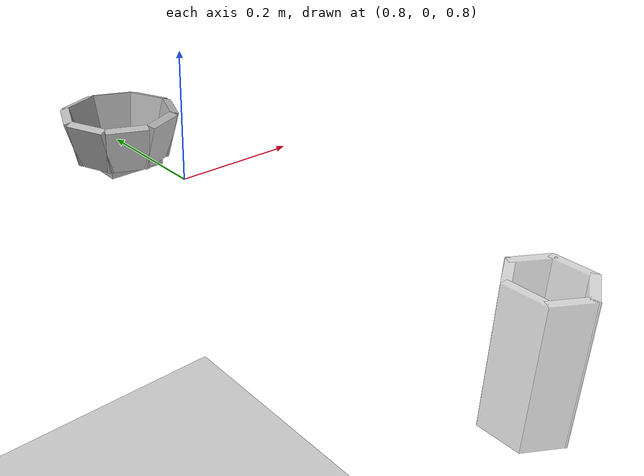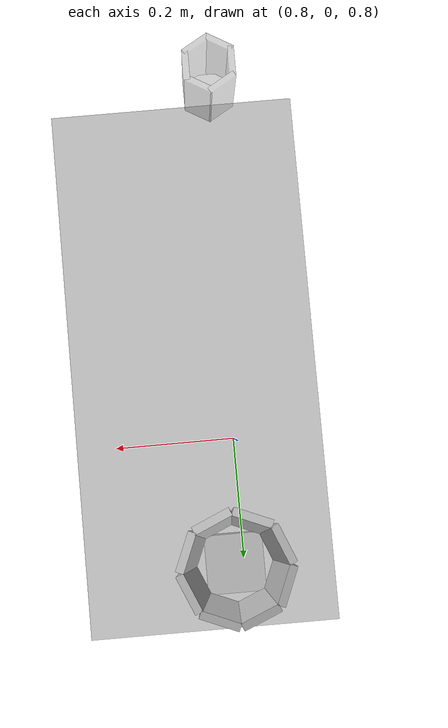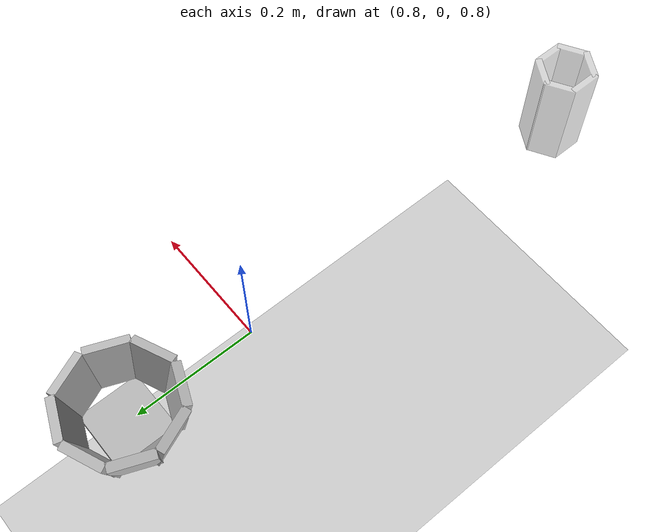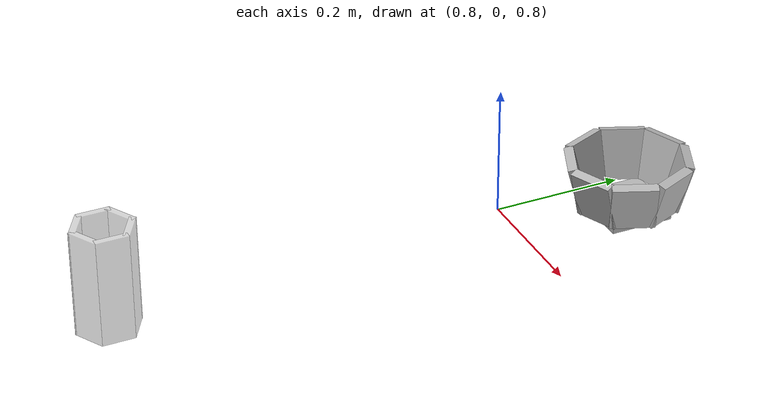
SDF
<sdf version="1.6">
 <world name="default">
  <light name="sun" type="directional">
   <pose>0 0 10 0 -0 0</pose>
   <diffuse>0.8 0.8 0.8 1</diffuse>
   <specular>0.2 0.2 0.2 1</specular>
   <attenuation>
    <range>1000</range>
    <constant>0.9</constant>
    <linear>0.01</linear>
    <quadratic>0.001</quadratic>
   </attenuation>
   <direction>-0.5 0.1 -0.9</direction>
  </light>
  <physics name="dart_2ms" default="0" type="dart">
   <max_step_size>0.002</max_step_size>
   <real_time_factor>1</real_time_factor>
   <real_time_update_rate>500</real_time_update_rate>
   <dart><solver><solver_type>pgs</solver_type></solver></dart>
  </physics>
  <model name="ground_plane">
   <static>1</static>
   <link name="link">
    <collision name="collision">
     <geometry><plane><normal>0 0 1</normal><size>100 100</size></plane></geometry>
     <surface>
      <contact><collide_bitmask>65535</collide_bitmask></contact>
      <friction><ode><mu>100</mu><mu2>50</mu2></ode></friction>
     </surface>
    </collision>
    <visual name="visual">
     <cast_shadows>0</cast_shadows>
     <geometry><plane><normal>0 0 1</normal><size>100 100</size></plane></geometry>
     <material>
      <script><uri>file://media/materials/scripts/gazebo.material</uri><name>Gazebo/Grey</name></script>
     </material>
    </visual>
   </link>
  </model>
  <gravity>0 0 -9.8</gravity>
  <magnetic_field>6e-06 2.3e-05 -4.2e-05</magnetic_field>
  <atmosphere type="adiabatic"/>
  <scene><ambient>0.4 0.4 0.4 1</ambient><background>0.7 0.7 0.7 1</background><shadows>1</shadows></scene>
  <audio><device>default</device></audio>
  <spherical_coordinates>
   <surface_model>EARTH_WGS84</surface_model>
   <latitude_deg>0</latitude_deg>
   <longitude_deg>0</longitude_deg>
   <elevation>0</elevation>
   <heading_deg>0</heading_deg>
  </spherical_coordinates>
  <model name="jar_hollow">
   <link name="link">
    <inertial>
     <mass>0.1</mass>
     <inertia><ixx>0.0004</ixx><ixy>0</ixy><ixz>0</ixz><iyy>0.0004</iyy><iyz>0</iyz><izz>0.00012</izz></inertia>
    </inertial>
    <collision name="side1">
     <pose>0.037581 0 -0.015 0 -0 0</pose>
     <geometry><box><size>0.01 0.05 0.17</size></box></geometry>
     <surface>
      <friction><ode><mu>1</mu><mu2>1</mu2></ode></friction>
      <contact><ode><kp>1e+07</kp><kd>1</kd><min_depth>0.001</min_depth><max_vel>0.1</max_vel></ode></contact>
     </surface>
    </collision>
    <collision name="side2">
     <pose>-0.037581 0 -0.015 0 -0 0</pose>
     <geometry><box><size>0.01 0.05 0.17</size></box></geometry>
     <surface>
      <friction><ode><mu>1</mu><mu2>1</mu2></ode></friction>
      <contact><ode><kp>1e+07</kp><kd>1</kd><min_depth>0.001</min_depth><max_vel>0.1</max_vel></ode></contact>
     </surface>
    </collision>
    <collision name="side3">
     <pose>0.018437 -0.033383 -0.015 0 0 -1.04717</pose>
     <geometry><box><size>0.01 0.05 0.17</size></box></geometry>
     <surface>
      <friction><ode><mu>1</mu><mu2>1</mu2></ode></friction>
      <contact><ode><kp>1e+07</kp><kd>1</kd><min_depth>0.001</min_depth><max_vel>0.1</max_vel></ode></contact>
     </surface>
    </collision>
    <collision name="side4">
     <pose>-0.018437 0.033383 -0.015 0 0 -1.04717</pose>
     <geometry><box><size>0.01 0.05 0.17</size></box></geometry>
     <surface>
      <friction><ode><mu>1</mu><mu2>1</mu2></ode></friction>
      <contact><ode><kp>1e+07</kp><kd>1</kd><min_depth>0.001</min_depth><max_vel>0.1</max_vel></ode></contact>
     </surface>
    </collision>
    <collision name="side5">
     <pose>-0.018437 -0.033383 -0.015 0 -0 1.04717</pose>
     <geometry><box><size>0.01 0.05 0.17</size></box></geometry>
     <surface>
      <friction><ode><mu>1</mu><mu2>1</mu2></ode></friction>
      <contact><ode><kp>1e+07</kp><kd>1</kd><min_depth>0.001</min_depth><max_vel>0.1</max_vel></ode></contact>
     </surface>
    </collision>
    <collision name="side6">
     <pose>0.018437 0.033383 -0.015 0 -0 1.04717</pose>
     <geometry><box><size>0.01 0.05 0.17</size></box></geometry>
     <surface>
      <friction><ode><mu>1</mu><mu2>1</mu2></ode></friction>
      <contact><ode><kp>1e+07</kp><kd>1</kd><min_depth>0.001</min_depth><max_vel>0.1</max_vel></ode></contact>
     </surface>
    </collision>
    <collision name="bottom">
     <pose>0 0 -0.09 0 -0 0</pose>
     <geometry><box><size>0.06 0.06 0.02</size></box></geometry>
     <surface>
      <friction><ode><mu>1</mu><mu2>1</mu2></ode></friction>
      <contact><ode><kp>1e+07</kp><kd>1</kd><min_depth>0.001</min_depth><max_vel>0.1</max_vel></ode></contact>
     </surface>
    </collision>
    <visual name="side1">
     <pose>0.037581 0 -0.015 0 -0 0</pose>
     <geometry><box><size>0.01 0.05 0.17</size></box></geometry>
     <material><diffuse>0.7 0.7 0.7 0.5</diffuse></material>
    </visual>
    <visual name="side2">
     <pose>-0.037581 0 -0.015 0 -0 0</pose>
     <geometry><box><size>0.01 0.05 0.17</size></box></geometry>
     <material><diffuse>0.7 0.7 0.7 0.5</diffuse></material>
    </visual>
    <visual name="side3">
     <pose>0.018437 -0.033383 -0.015 0 0 -1.04717</pose>
     <geometry><box><size>0.01 0.05 0.17</size></box></geometry>
     <material><diffuse>0.7 0.7 0.7 0.5</diffuse></material>
    </visual>
    <visual name="side4">
     <pose>-0.018437 0.033383 -0.015 0 0 -1.04717</pose>
     <geometry><box><size>0.01 0.05 0.17</size></box></geometry>
     <material><diffuse>0.7 0.7 0.7 0.5</diffuse></material>
    </visual>
    <visual name="side5">
     <pose>-0.018437 -0.033383 -0.015 0 -0 1.04717</pose>
     <geometry><box><size>0.01 0.05 0.17</size></box></geometry>
     <material><diffuse>0.7 0.7 0.7 0.5</diffuse></material>
    </visual>
    <visual name="side6">
     <pose>0.018437 0.033383 -0.015 0 -0 1.04717</pose>
     <geometry><box><size>0.01 0.05 0.17</size></box></geometry>
     <material><diffuse>0.7 0.7 0.7 0.5</diffuse></material>
    </visual>
    <visual name="bottom">
     <pose>0 0 -0.09 0 -0 0</pose>
     <geometry><box><size>0.06 0.06 0.02</size></box></geometry>
     <material><diffuse>0.7 0.7 0.7 0.5</diffuse></material>
    </visual>
   </link>
   <joint name="cap_hinge" type="revolute">
    <parent>link</parent>
    <child>hidden_cap</child>
    <axis>
     <xyz>1 0 0</xyz>
     <limit><lower>-1.57</lower><upper>0</upper></limit>
     <dynamics>
      <friction>1</friction>
      <spring_reference>0</spring_reference>
      <spring_stiffness>0</spring_stiffness>
     </dynamics>
     <use_parent_model_frame>0</use_parent_model_frame>
    </axis>
    <pose>0 -0.035 0.07 0 -0 0</pose>
   </joint>
   <link name="hidden_cap">
    <gravity>0</gravity>
    <inertial>
     <pose>0 0 0.07 0 -0 0</pose>
     <mass>0.02</mass>
     <inertia><ixx>0.00015</ixx><ixy>0</ixy><ixz>0</ixz><iyy>0.00015</iyy><iyz>0</iyz><izz>3e-05</izz></inertia>
    </inertial>
    <collision name="collision1">
     <pose>0 0 0.07 0 -0 0</pose>
     <geometry><box><size>0.05 0.05 0.006</size></box></geometry>
     <surface>
      <friction><ode><mu>1</mu><mu2>1</mu2></ode></friction>
      <contact><ode><kp>1e+07</kp><kd>1</kd><min_depth>0.001</min_depth><max_vel>0.1</max_vel></ode></contact>
     </surface>
    </collision>
   </link>
   <pose>0.790384 -0.611693 0.86 -2e-06 1e-06 3.1e-05</pose>
  </model>
  <model name="bowl_high">
   <link name="link">
    <inertial>
     <pose>0 0 0.035 0 -0 0</pose>
     <mass>0.1</mass>
     <inertia>
      <ixx>0.000250308</ixx>
      <ixy>0</ixy>
      <ixz>0</ixz>
      <iyy>0.000250308</iyy>
      <iyz>0</iyz>
      <izz>0.0004802</izz>
     </inertia>
    </inertial>
    <collision name="side1">
     <pose>0.0301 0.07183 0.05588 -0.265282 -0 -0.392688</pose>
     <geometry><box><size>0.07 0.015 0.08</size></box></geometry>
    </collision>
    <collision name="side2">
     <pose>-0.03 0.0717 0.05588 -0.265282 -0 0.392688</pose>
     <geometry><box><size>0.07 0.015 0.08</size></box></geometry>
    </collision>
    <collision name="side3">
     <pose>-0.0717 0.03 0.05588 -0.265282 -0 1.17806</pose>
     <geometry><box><size>0.07 0.015 0.08</size></box></geometry>
    </collision>
    <collision name="side4">
     <pose>-0.0717 -0.03 0.05588 -0.265282 -0 1.96344</pose>
     <geometry><box><size>0.07 0.015 0.08</size></box></geometry>
    </collision>
    <collision name="side5">
     <pose>-0.03 -0.0717 0.05588 -0.265282 0 2.74881</pose>
     <geometry><box><size>0.07 0.015 0.08</size></box></geometry>
    </collision>
    <collision name="side6">
     <pose>0.03 -0.0717 0.05588 -0.265282 -0 -2.73155</pose>
     <geometry><box><size>0.07 0.015 0.08</size></box></geometry>
    </collision>
    <collision name="side7">
     <pose>0.0717 -0.03 0.05588 -0.265282 -0 -1.96362</pose>
     <geometry><box><size>0.07 0.015 0.08</size></box></geometry>
    </collision>
    <collision name="side8">
     <pose>0.0717 0.03 0.05588 -0.265282 -0 -1.1608</pose>
     <geometry><box><size>0.07 0.015 0.08</size></box></geometry>
    </collision>
    <collision name="bottom">
     <pose>0 0 0.01 0 -0 0</pose>
     <geometry><box><size>0.1 0.1 0.02</size></box></geometry>
    </collision>
    <visual name="side1">
     <pose>0.0301 0.07183 0.05588 -0.265282 -0 -0.392688</pose>
     <geometry><box><size>0.07 0.015 0.08</size></box></geometry>
    </visual>
    <visual name="side2">
     <pose>-0.03 0.0717 0.05588 -0.265282 -0 0.392688</pose>
     <geometry><box><size>0.07 0.015 0.08</size></box></geometry>
    </visual>
    <visual name="side3">
     <pose>-0.0717 0.03 0.05588 -0.265282 -0 1.17806</pose>
     <geometry><box><size>0.07 0.015 0.08</size></box></geometry>
    </visual>
    <visual name="side4">
     <pose>-0.0717 -0.03 0.05588 -0.265282 -0 1.96344</pose>
     <geometry><box><size>0.07 0.015 0.08</size></box></geometry>
    </visual>
    <visual name="side5">
     <pose>-0.03 -0.0717 0.05588 -0.265282 0 2.74881</pose>
     <geometry><box><size>0.07 0.015 0.08</size></box></geometry>
    </visual>
    <visual name="side6">
     <pose>0.03 -0.0717 0.05588 -0.265282 -0 -2.73155</pose>
     <geometry><box><size>0.07 0.015 0.08</size></box></geometry>
    </visual>
    <visual name="side7">
     <pose>0.0717 -0.03 0.05588 -0.265282 -0 -1.96362</pose>
     <geometry><box><size>0.07 0.015 0.08</size></box></geometry>
    </visual>
    <visual name="side8">
     <pose>0.0717 0.03 0.05588 -0.265282 -0 -1.1608</pose>
     <geometry><box><size>0.07 0.015 0.08</size></box></geometry>
    </visual>
    <visual name="bottom">
     <pose>0 0 0.01 0 -0 0</pose>
     <geometry><box><size>0.1 0.1 0.02</size></box></geometry>
    </visual>
   </link>
   <pose>0.815122 0.21251 0.75 0 -1e-06 -6e-06</pose>
  </model>
 </world>
</sdf>
